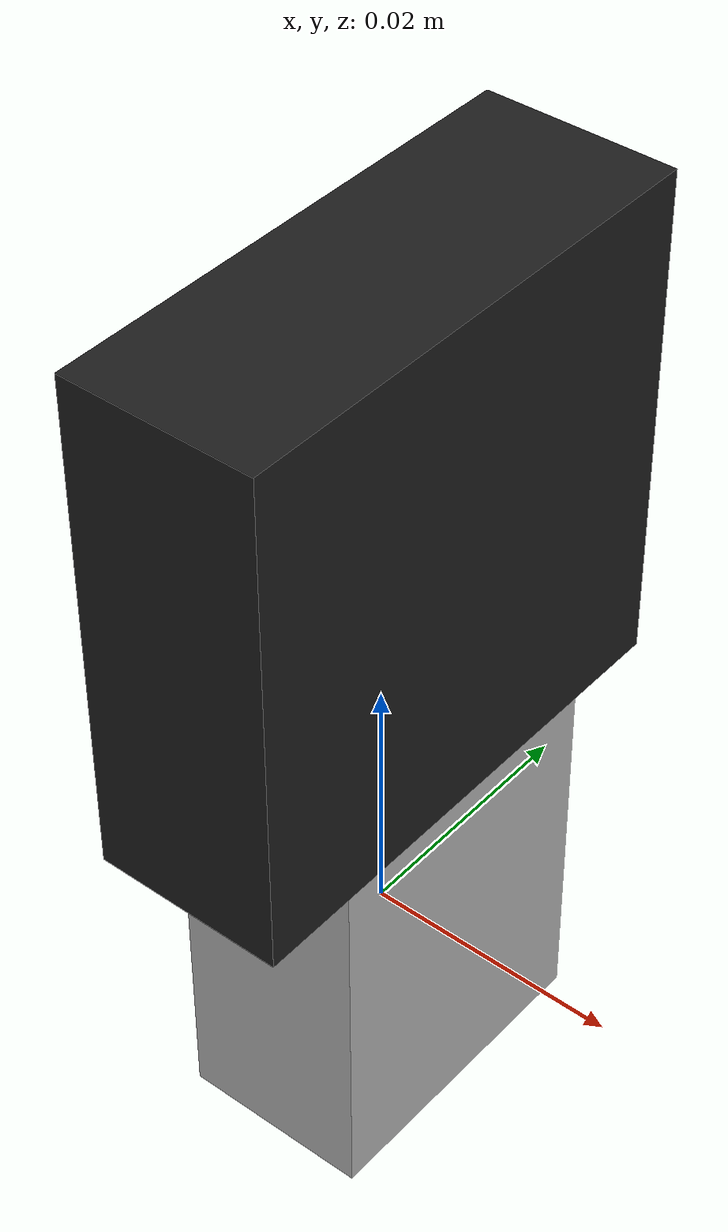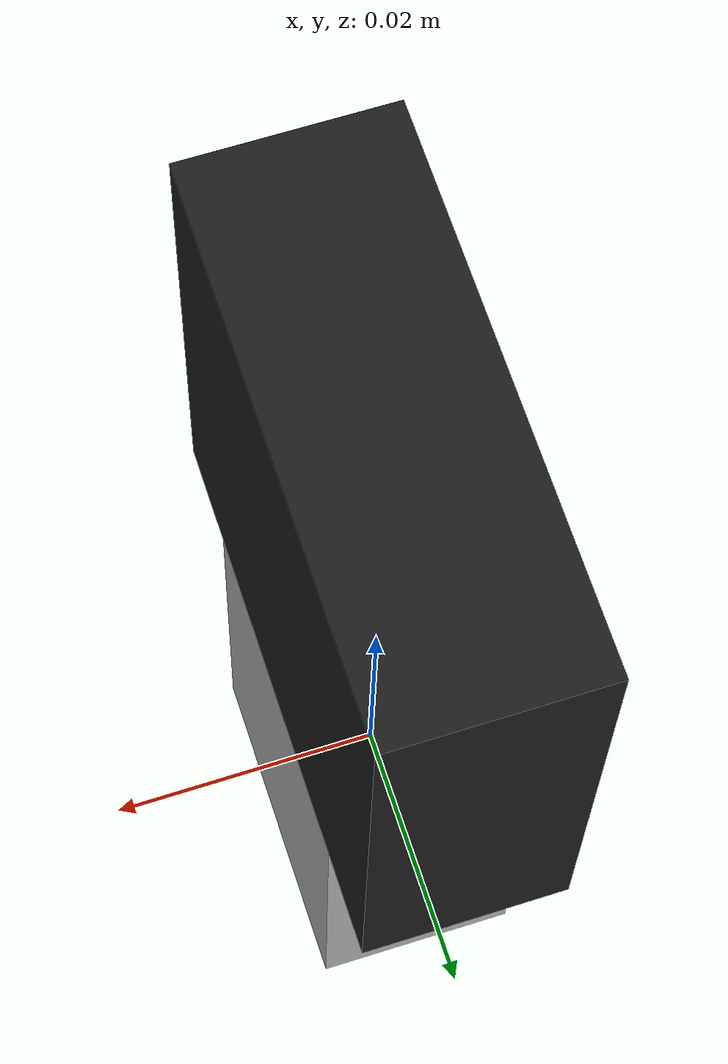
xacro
<?xml version="1.0"?>
<robot xmlns:xacro="http://www.ros.org/wiki/xacro" name="camera">
    <xacro:include filename="$(find vistar_gazebo)/models/camera/camera.xacro"/>
    <link name="world"/>
    <xacro:usb_camera parent="world" prefix="camera" >
        <origin xyz="0 0 0" rpy="0 0 0"/>
    </xacro:usb_camera>
    <gazebo>
    <plugin name="ros_control" filename="libgazebo_ros_control.so">
    </plugin>
	</gazebo>
</robot>

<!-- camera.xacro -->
<robot xmlns:xacro="http://www.ros.org/wiki/xacro" name="camera">

    <xacro:macro name="usb_camera" params="parent prefix:=camera *origin">
        <joint name="${parent}_${prefix}_base_joint" type="fixed">
			<xacro:insert_block name="origin"/>
			<parent link="${parent}"/>
			<child link="${prefix}_base_link"/>
		</joint>
        <!-- Create camera reference frame -->
        <link name="${prefix}_base_link">
                    <inertial>
                <mass value="0.1" />
                <origin xyz="0 0 0" />
                <inertia ixx="0.01" ixy="0.0" ixz="0.0"
                         iyy="0.01" iyz="0.0"
                         izz="0.01" />
            </inertial>

            <visual>
                <origin xyz=" 0 0 0 " rpy="0 0 0" />
                <geometry>
                    <box size="0.015 0.025 0.03" />
                </geometry>
                <material name="LightGrey">
                    <color rgba="0.7 0.7 0.7 1.0"/>
                </material>
            </visual>

            <collision>
                <origin xyz="0.0 0.0 0.0" rpy="0 0 0" />
                <geometry>
                    <box size="0.015 0.025 0.03" />
                </geometry>
            </collision>
        </link>
        <joint name="base_joint" type="fixed">
			<origin xyz="0 0 0.035" rpy="0 0 0"/>
			<parent link="${prefix}_base_link"/>
			<child link="${prefix}_link"/>
        </joint>

        <link name="${prefix}_link">
            <inertial>
                <mass value="0.1" />
                <origin xyz="0 0 0" />
                <inertia ixx="0.01" ixy="0.0" ixz="0.0"
                         iyy="0.01" iyz="0.0"
                         izz="0.01" />
            </inertial>

            <visual>
                <origin xyz=" 0 0 0 " rpy="0 0 0" />
                <geometry>
                    <box size="0.015 0.04 0.04" />
                </geometry>
                <material name="black"/>
            </visual>

            <collision>
                <origin xyz="0.0 0.0 0.0" rpy="0 0 0" />
                <geometry>
                    <box size="0.015 0.04 0.04" />
                </geometry>
            </collision>
        </link>
        <gazebo reference="${prefix}_link">
            <material>Gazebo/Black</material>
        </gazebo>

        <gazebo reference="${prefix}_link">
            <sensor type="camera" name="camera">
                <update_rate>30.0</update_rate>
                <camera name="camera">
                    <horizontal_fov>1.3962634</horizontal_fov>
                    <image>
                        <width>1280</width>
                        <height>720</height>
                        <format>R8G8B8</format>
                    </image>
                    <clip>
                        <near>0.02</near>
                        <far>800</far>
                    </clip>
                    <noise>
                        <type>gaussian</type>
                        <mean>0.0</mean>
                        <stddev>0.007</stddev>
                    </noise>
                </camera>
                <plugin name="gazebo_camera" filename="libgazebo_ros_camera.so">
                    <alwaysOn>true</alwaysOn>
                    <updateRate>0.0</updateRate>
                    <cameraName>/camera</cameraName>
                    <imageTopicName>image_raw</imageTopicName>
                    <cameraInfoTopicName>camera_info</cameraInfoTopicName>
                    <frameName>${prefix}_link</frameName>
                    <hackBaseline>0.07</hackBaseline>
                    <distortionK1>0.0</distortionK1>
                    <distortionK2>0.0</distortionK2>
                    <distortionK3>0.0</distortionK3>
                    <distortionT1>0.0</distortionT1>
                    <distortionT2>0.0</distortionT2>
                </plugin>
            </sensor>
        </gazebo>

    </xacro:macro>
</robot>
